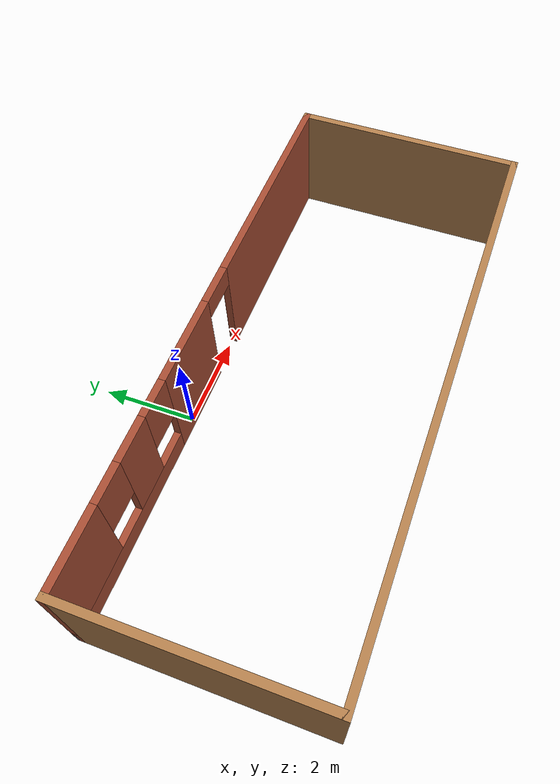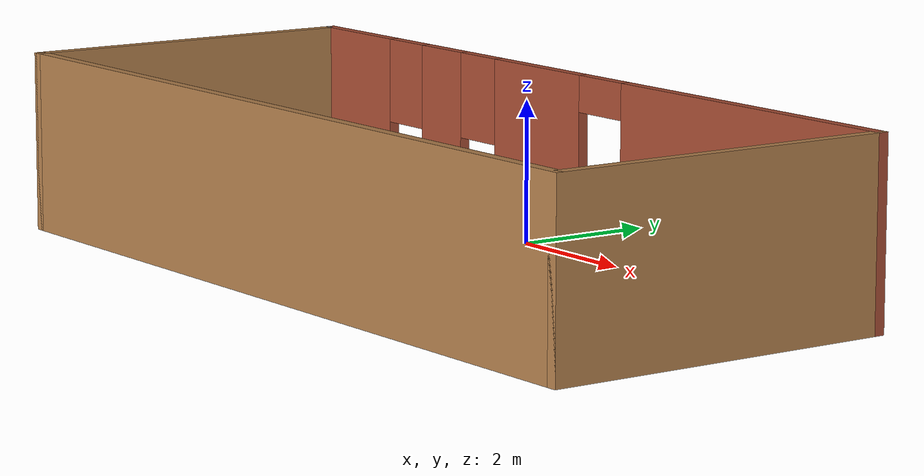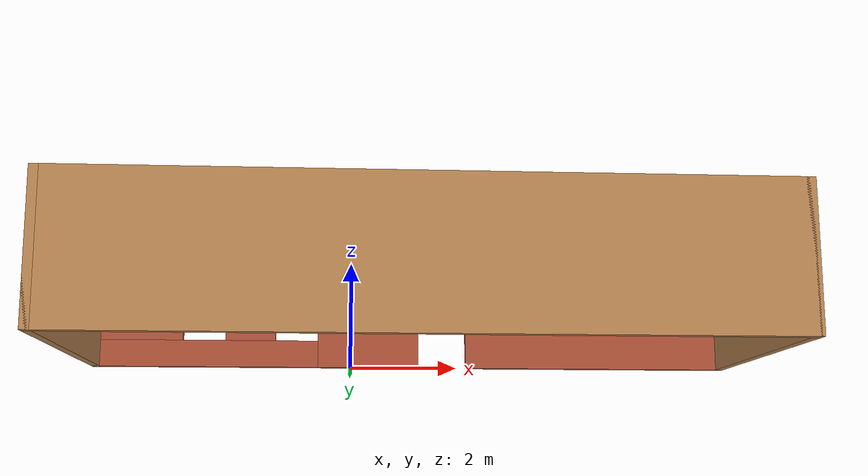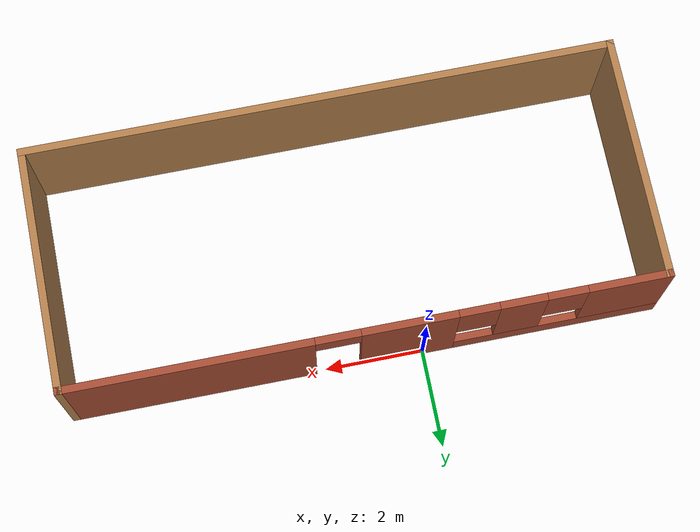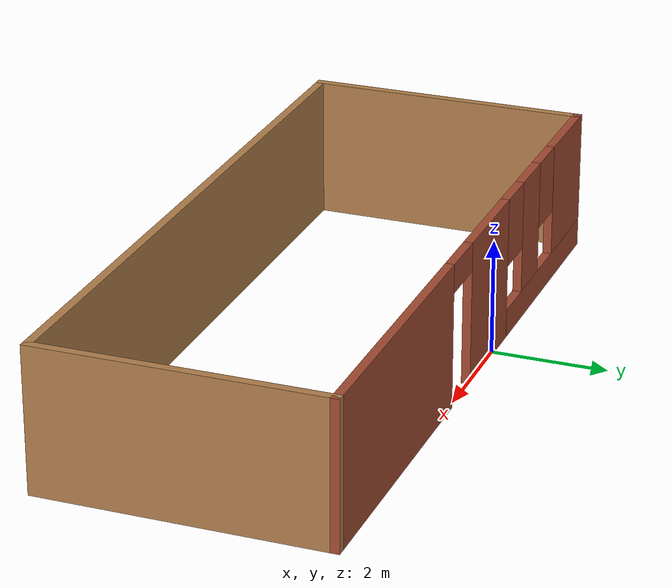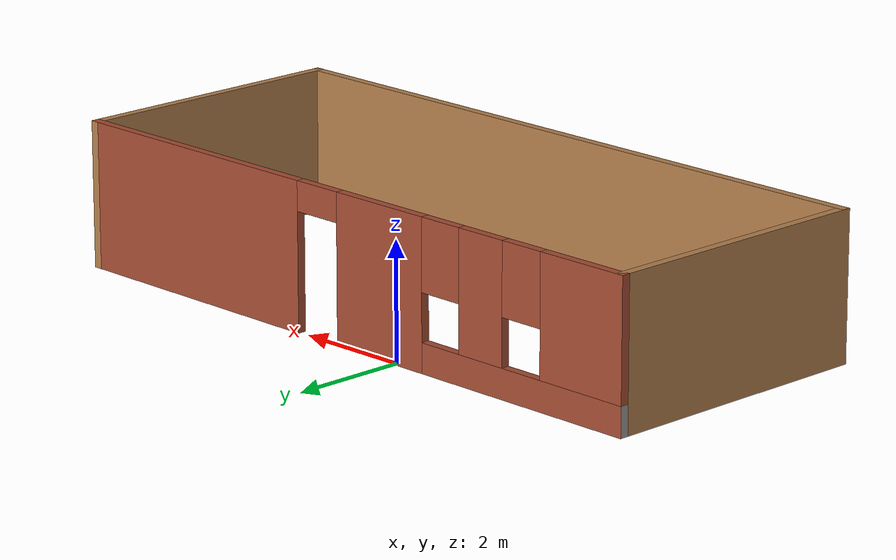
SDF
<?xml version='1.0'?>
<sdf version='1.6'>
  <model name='rectangle_building_1'>
    <pose frame=''>1.17854 -2.44652 0 0 -0 0</pose>
    <link name='Wall_13'>
      <collision name='Wall_13_Collision'>
        <geometry>
          <box>
            <size>0.15 0.15 2.5</size>
          </box>
        </geometry>
        <pose frame=''>0 0 1.25 0 -0 0</pose>
      </collision>
      <visual name='Wall_13_Visual'>
        <pose frame=''>0 0 1.25 0 -0 0</pose>
        <geometry>
          <box>
            <size>0.15 0.15 2.5</size>
          </box>
        </geometry>
        <material>
          <script>
            <uri>file://media/materials/scripts/gazebo.material</uri>
            <name>Gazebo/Grey</name>
          </script>
          <ambient>1 1 1 1</ambient>
        </material>
        <meta>
          <layer>0</layer>
        </meta>
      </visual>
      <pose frame=''>-5.925 2.425 0 0 -0 0</pose>
    </link>
    <link name='Wall_26'>
      <collision name='Wall_26_Collision'>
        <geometry>
          <box>
            <size>5 0.15 2.5</size>
          </box>
        </geometry>
        <pose frame=''>0 0 1.25 0 -0 0</pose>
      </collision>
      <visual name='Wall_26_Visual'>
        <pose frame=''>0 0 1.25 0 -0 0</pose>
        <geometry>
          <box>
            <size>5 0.15 2.5</size>
          </box>
        </geometry>
        <material>
          <script>
            <uri>file://media/materials/scripts/gazebo.material</uri>
            <name>Gazebo/Wood</name>
          </script>
          <ambient>1 1 1 1</ambient>
        </material>
        <meta>
          <layer>0</layer>
        </meta>
      </visual>
      <pose frame=''>-5.925 0 0 0 0 -1.5708</pose>
    </link>
    <link name='Wall_27'>
      <collision name='Wall_27_Collision'>
        <geometry>
          <box>
            <size>12 0.15 2.5</size>
          </box>
        </geometry>
        <pose frame=''>0 0 1.25 0 -0 0</pose>
      </collision>
      <visual name='Wall_27_Visual'>
        <pose frame=''>0 0 1.25 0 -0 0</pose>
        <geometry>
          <box>
            <size>12 0.15 2.5</size>
          </box>
        </geometry>
        <material>
          <script>
            <uri>file://media/materials/scripts/gazebo.material</uri>
            <name>Gazebo/Wood</name>
          </script>
          <ambient>0.435294 0.796078 0.67451 1</ambient>
        </material>
        <meta>
          <layer>0</layer>
        </meta>
      </visual>
      <pose frame=''>0 -2.425 0 0 -0 0</pose>
    </link>
    <link name='Wall_28'>
      <collision name='Wall_28_Collision'>
        <geometry>
          <box>
            <size>5 0.15 2.5</size>
          </box>
        </geometry>
        <pose frame=''>0 0 1.25 0 -0 0</pose>
      </collision>
      <visual name='Wall_28_Visual'>
        <pose frame=''>0 0 1.25 0 -0 0</pose>
        <geometry>
          <box>
            <size>5 0.15 2.5</size>
          </box>
        </geometry>
        <material>
          <script>
            <uri>file://media/materials/scripts/gazebo.material</uri>
            <name>Gazebo/Wood</name>
          </script>
          <ambient>0.996078 0.47451 0.0196078 1</ambient>
        </material>
        <meta>
          <layer>0</layer>
        </meta>
      </visual>
      <pose frame=''>5.925 0 0 0 -0 1.5708</pose>
    </link>
    <link name='Wall_29'>
      <pose frame=''>0 2.425 0 0 -0 3.14159</pose>
      <visual name='Wall_29_Visual_0'>
        <pose frame=''>-3.50367 0 1.25 0 -0 0</pose>
        <geometry>
          <box>
            <size>4.99266 0.15 2.5</size>
          </box>
        </geometry>
        <material>
          <script>
            <uri>file://media/materials/scripts/gazebo.material</uri>
            <name>Gazebo/Bricks</name>
          </script>
          <ambient>1 1 1 1</ambient>
        </material>
        <meta>
          <layer>0</layer>
        </meta>
      </visual>
      <collision name='Wall_29_Collision_0'>
        <geometry>
          <box>
            <size>4.99266 0.15 2.5</size>
          </box>
        </geometry>
        <pose frame=''>-3.50367 0 1.25 0 -0 0</pose>
      </collision>
      <visual name='Wall_29_Visual_1'>
        <pose frame=''>0.843056 0 1.25 0 -0 0</pose>
        <geometry>
          <box>
            <size>1.9008 0.15 2.5</size>
          </box>
        </geometry>
        <material>
          <script>
            <uri>file://media/materials/scripts/gazebo.material</uri>
            <name>Gazebo/Bricks</name>
          </script>
          <ambient>1 1 1 1</ambient>
        </material>
        <meta>
          <layer>0</layer>
        </meta>
      </visual>
      <collision name='Wall_29_Collision_1'>
        <geometry>
          <box>
            <size>1.9008 0.15 2.5</size>
          </box>
        </geometry>
        <pose frame=''>0.843056 0 1.25 0 -0 0</pose>
      </collision>
      <visual name='Wall_29_Visual_2'>
        <pose frame=''>3.89673 0 0.25 0 -0 0</pose>
        <geometry>
          <box>
            <size>4.20654 0.15 0.5</size>
          </box>
        </geometry>
        <material>
          <script>
            <uri>file://media/materials/scripts/gazebo.material</uri>
            <name>Gazebo/Bricks</name>
          </script>
          <ambient>1 1 1 1</ambient>
        </material>
        <meta>
          <layer>0</layer>
        </meta>
      </visual>
      <collision name='Wall_29_Collision_2'>
        <geometry>
          <box>
            <size>4.20654 0.15 0.5</size>
          </box>
        </geometry>
        <pose frame=''>3.89673 0 0.25 0 -0 0</pose>
      </collision>
      <visual name='Wall_29_Visual_3'>
        <pose frame=''>3.05969 0 1.5 0 -0 0</pose>
        <geometry>
          <box>
            <size>0.932475 0.15 2</size>
          </box>
        </geometry>
        <material>
          <script>
            <uri>file://media/materials/scripts/gazebo.material</uri>
            <name>Gazebo/Bricks</name>
          </script>
          <ambient>1 1 1 1</ambient>
        </material>
        <meta>
          <layer>0</layer>
        </meta>
      </visual>
      <collision name='Wall_29_Collision_3'>
        <geometry>
          <box>
            <size>0.932475 0.15 2</size>
          </box>
        </geometry>
        <pose frame=''>3.05969 0 1.5 0 -0 0</pose>
      </collision>
      <visual name='Wall_29_Visual_4'>
        <pose frame=''>5.16297 0 1.5 0 -0 0</pose>
        <geometry>
          <box>
            <size>1.67407 0.15 2</size>
          </box>
        </geometry>
        <material>
          <script>
            <uri>file://media/materials/scripts/gazebo.material</uri>
            <name>Gazebo/Bricks</name>
          </script>
          <ambient>1 1 1 1</ambient>
        </material>
        <meta>
          <layer>0</layer>
        </meta>
      </visual>
      <collision name='Wall_29_Collision_4'>
        <geometry>
          <box>
            <size>1.67407 0.15 2</size>
          </box>
        </geometry>
        <pose frame=''>5.16297 0 1.5 0 -0 0</pose>
      </collision>
      <visual name='Wall_29_Visual_5'>
        <pose frame=''>2.19346 0 1.9 0 -0 0</pose>
        <geometry>
          <box>
            <size>0.8 0.15 1.2</size>
          </box>
        </geometry>
        <material>
          <script>
            <uri>file://media/materials/scripts/gazebo.material</uri>
            <name>Gazebo/Bricks</name>
          </script>
          <ambient>1 1 1 1</ambient>
        </material>
        <meta>
          <layer>0</layer>
        </meta>
      </visual>
      <collision name='Wall_29_Collision_5'>
        <geometry>
          <box>
            <size>0.8 0.15 1.2</size>
          </box>
        </geometry>
        <pose frame=''>2.19346 0 1.9 0 -0 0</pose>
      </collision>
      <visual name='Wall_29_Visual_6'>
        <pose frame=''>3.92593 0 1.9 0 -0 0</pose>
        <geometry>
          <box>
            <size>0.8 0.15 1.2</size>
          </box>
        </geometry>
        <material>
          <script>
            <uri>file://media/materials/scripts/gazebo.material</uri>
            <name>Gazebo/Bricks</name>
          </script>
          <ambient>1 1 1 1</ambient>
        </material>
        <meta>
          <layer>0</layer>
        </meta>
      </visual>
      <collision name='Wall_29_Collision_6'>
        <geometry>
          <box>
            <size>0.8 0.15 1.2</size>
          </box>
        </geometry>
        <pose frame=''>3.92593 0 1.9 0 -0 0</pose>
      </collision>
      <visual name='Wall_29_Visual_7'>
        <pose frame=''>-0.557344 0 2.25 0 -0 0</pose>
        <geometry>
          <box>
            <size>0.9 0.15 0.5</size>
          </box>
        </geometry>
        <material>
          <script>
            <uri>file://media/materials/scripts/gazebo.material</uri>
            <name>Gazebo/Bricks</name>
          </script>
          <ambient>1 1 1 1</ambient>
        </material>
        <meta>
          <layer>0</layer>
        </meta>
      </visual>
      <collision name='Wall_29_Collision_7'>
        <geometry>
          <box>
            <size>0.9 0.15 0.5</size>
          </box>
        </geometry>
        <pose frame=''>-0.557344 0 2.25 0 -0 0</pose>
      </collision>
    </link>
    <static>1</static>
  </model>
</sdf>
